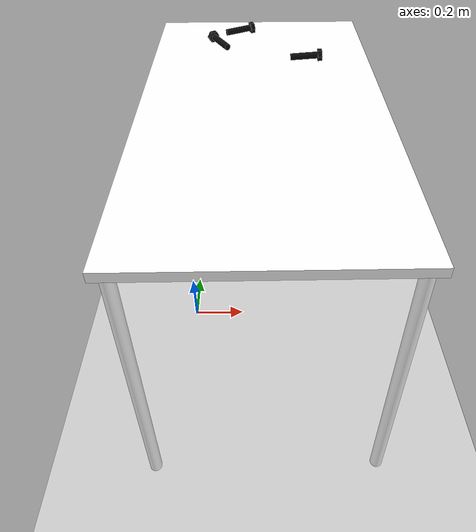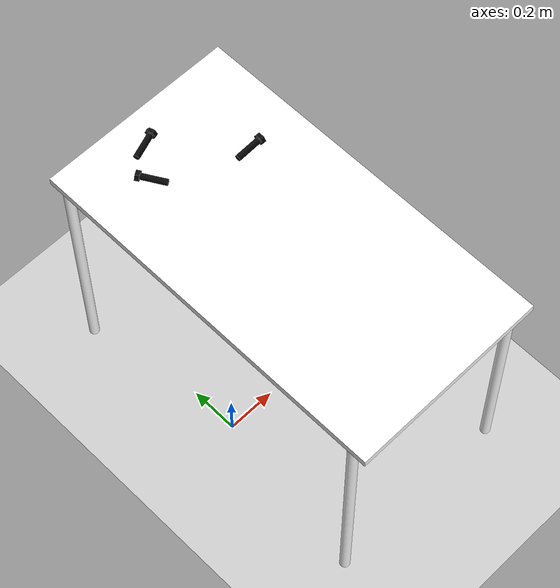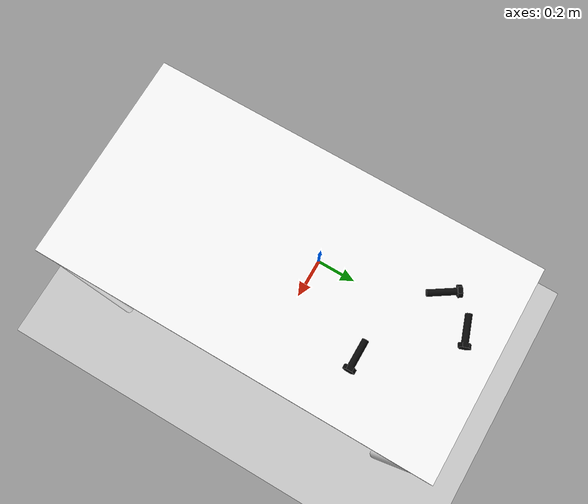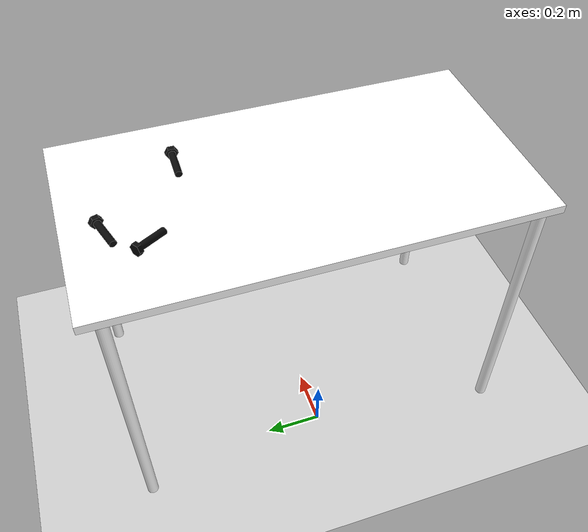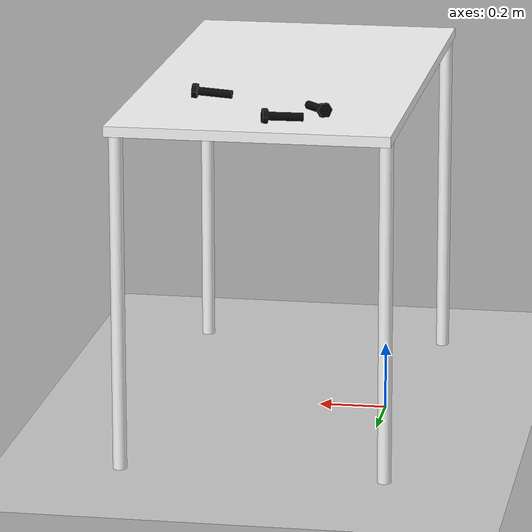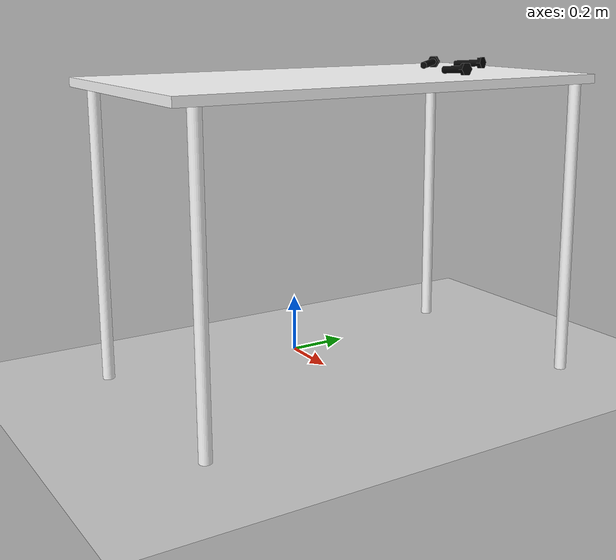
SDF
<sdf version='1.9'>
  <world name='arm_and_table'>
    <physics name='1ms' type='ignored'>
      <max_step_size>0.001</max_step_size>
      <real_time_factor>1</real_time_factor>
      <real_time_update_rate>1000</real_time_update_rate>
    </physics>
    <plugin name='ignition::gazebo::systems::Physics' filename='ignition-gazebo-physics-system'/>
    <plugin name='ignition::gazebo::systems::UserCommands' filename='ignition-gazebo-user-commands-system'/>
    <plugin name='ignition::gazebo::systems::SceneBroadcaster' filename='ignition-gazebo-scene-broadcaster-system'/>
    <scene>
      <shadows>false</shadows>
      <ambient>0.4 0.4 0.4 1</ambient>
      <background>0.7 0.7 0.7 1</background>
    </scene>
    <gui>
      <plugin name='3D View' filename='GzScene3D'>
        <ignition-gui>
          <title>3D View</title>
          <property type='bool' key='showTitleBar'>false</property>
          <property type='string' key='state'>docked</property>
        </ignition-gui>
        <engine>ogre2</engine>
        <scene>scene</scene>
        <ambient_light>0.4 0.4 0.4</ambient_light>
        <background_color>0.8 0.8 0.8</background_color>
        <camera_pose>2 2 2 0 0.5 -2.5</camera_pose>
      </plugin>
      <plugin name='World control' filename='WorldControl'>
        <ignition-gui>
          <title>World control</title>
          <property type='bool' key='showTitleBar'>false</property>
          <property type='bool' key='resizable'>false</property>
          <property type='double' key='height'>72</property>
          <property type='double' key='width'>121</property>
          <property type='double' key='z'>1</property>
          <property type='string' key='state'>floating</property>
          <anchors target='3D View'>
            <line own='left' target='left'/>
            <line own='bottom' target='bottom'/>
          </anchors>
        </ignition-gui>
        <play_pause>true</play_pause>
        <step>true</step>
        <start_paused>true</start_paused>
      </plugin>
      <plugin name='World stats' filename='WorldStats'>
        <ignition-gui>
          <title>World stats</title>
          <property type='bool' key='showTitleBar'>false</property>
          <property type='bool' key='resizable'>false</property>
          <property type='double' key='height'>110</property>
          <property type='double' key='width'>290</property>
          <property type='double' key='z'>1</property>
          <property type='string' key='state'>floating</property>
          <anchors target='3D View'>
            <line own='right' target='right'/>
            <line own='bottom' target='bottom'/>
          </anchors>
        </ignition-gui>
        <sim_time>true</sim_time>
        <real_time>true</real_time>
        <real_time_factor>true</real_time_factor>
        <iterations>true</iterations>
      </plugin>
    </gui>
    <gravity>0 0 -9.8</gravity>
    <magnetic_field>6e-06 2.3e-05 -4.2e-05</magnetic_field>
    <atmosphere type='adiabatic'/>
    <scene>
      <ambient>0.4 0.4 0.4 1</ambient>
      <background>0.7 0.7 0.7 1</background>
      <shadows>true</shadows>
    </scene>
    <model name='ground_plane'>
      <static>true</static>
      <link name='link'>
        <collision name='collision'>
          <geometry>
            <plane>
              <normal>0 0 1</normal>
              <size>100 100</size>
            </plane>
          </geometry>
          <surface>
            <friction>
              <ode/>
            </friction>
            <bounce/>
            <contact/>
          </surface>
        </collision>
        <visual name='visual'>
          <geometry>
            <plane>
              <normal>0 0 1</normal>
              <size>100 100</size>
            </plane>
          </geometry>
          <material>
            <ambient>0.8 0.8 0.8 1</ambient>
            <diffuse>0.8 0.8 0.8 1</diffuse>
            <specular>0.8 0.8 0.8 1</specular>
          </material>
        </visual>
        <pose>0 0 0 0 -0 0</pose>
        <inertial>
          <pose>0 0 0 0 -0 0</pose>
          <mass>1</mass>
          <inertia>
            <ixx>1</ixx>
            <ixy>0</ixy>
            <ixz>0</ixz>
            <iyy>1</iyy>
            <iyz>0</iyz>
            <izz>1</izz>
          </inertia>
        </inertial>
        <enable_wind>false</enable_wind>
      </link>
      <pose>0 0 0 0 -0 0</pose>
      <self_collide>false</self_collide>
    </model>
    <model name='table'>
      <static>true</static>
      <model name='table'>
        <static>true</static>
        <link name='link'>
          <collision name='surface'>
            <pose>0 0 1.0 0 0 0</pose>
            <geometry>
              <box>
                <size>1.5 0.8 0.03</size>
              </box>
            </geometry>
            <surface>
              <friction>
                <ode>
                  <mu>0.59999999999999998</mu>
                  <mu2>0.59999999999999998</mu2>
                </ode>
              </friction>
              <bounce/>
              <contact/>
            </surface>
          </collision>
          <visual name='visual1'>
            <pose>0 0 1.0 0 0 0</pose>
            <geometry>
              <box>
                <size>1.5 0.8 0.03</size>
              </box>
            </geometry>
            <material>
              <ambient>1 1 1 1</ambient>
              <diffuse>1 1 1 1</diffuse>
              <specular>1 1 1 1</specular>
            </material>
          </visual>
          <collision name='front_left_leg'>
            <pose>0.68 0.38 0.5 0 0 0</pose>
            <geometry>
              <cylinder>
                <radius>0.02</radius>
                <length>1</length>
              </cylinder>
            </geometry>
            <surface>
              <friction>
                <ode/>
              </friction>
              <bounce/>
              <contact/>
            </surface>
          </collision>
          <visual name='front_left_leg'>
            <pose>0.68 0.38 0.5 0 0 0</pose>
            <geometry>
              <cylinder>
                <radius>0.02</radius>
                <length>1</length>
              </cylinder>
            </geometry>
            <material>
              <ambient>1 1 1 1</ambient>
              <diffuse>1 1 1 1</diffuse>
              <specular>1 1 1 1</specular>
            </material>
          </visual>
          <collision name='front_right_leg'>
            <pose>0.68 -0.38 0.5 0 0 0</pose>
            <geometry>
              <cylinder>
                <radius>0.02</radius>
                <length>1</length>
              </cylinder>
            </geometry>
            <surface>
              <friction>
                <ode/>
              </friction>
              <bounce/>
              <contact/>
            </surface>
          </collision>
          <visual name='front_right_leg'>
            <pose>0.68 -0.38 0.5 0 0 0</pose>
            <geometry>
              <cylinder>
                <radius>0.02</radius>
                <length>1</length>
              </cylinder>
            </geometry>
            <material>
              <ambient>1 1 1 1</ambient>
              <diffuse>1 1 1 1</diffuse>
              <specular>1 1 1 1</specular>
            </material>
          </visual>
          <collision name='back_right_leg'>
            <pose>-0.68 -0.38 0.5 0 0 0</pose>
            <geometry>
              <cylinder>
                <radius>0.02</radius>
                <length>1</length>
              </cylinder>
            </geometry>
            <surface>
              <friction>
                <ode/>
              </friction>
              <bounce/>
              <contact/>
            </surface>
          </collision>
          <visual name='back_right_leg'>
            <pose>-0.68 -0.38 0.5 0 0 0</pose>
            <geometry>
              <cylinder>
                <radius>0.02</radius>
                <length>1</length>
              </cylinder>
            </geometry>
            <material>
              <ambient>1 1 1 1</ambient>
              <diffuse>1 1 1 1</diffuse>
              <specular>1 1 1 1</specular>
            </material>
          </visual>
          <collision name='back_left_leg'>
            <pose>-0.68 0.38 0.5 0 0 0</pose>
            <geometry>
              <cylinder>
                <radius>0.02</radius>
                <length>1</length>
              </cylinder>
            </geometry>
            <surface>
              <friction>
                <ode/>
              </friction>
              <bounce/>
              <contact/>
            </surface>
          </collision>
          <visual name='back_left_leg'>
            <pose>-0.68 0.38 0.5 0 0 0</pose>
            <geometry>
              <cylinder>
                <radius>0.02</radius>
                <length>1</length>
              </cylinder>
            </geometry>
            <material>
              <ambient>1 1 1 1</ambient>
              <diffuse>1 1 1 1</diffuse>
              <specular>1 1 1 1</specular>
            </material>
          </visual>
        </link>
      </model>
      <pose>0.29 0 0 0 -0 1.5708</pose>
      <self_collide>false</self_collide>
    </model>
    <model name='bolt1'>
      <model name='bolt'>
        <static>false</static>
        <link name='link'>
          <inertial>
            <mass>0.064000000000000001</mass>
            <inertia>
              <ixx>2.1715000000000001e-05</ixx>
              <ixy>0</ixy>
              <ixz>0</ixz>
              <iyy>2.1715000000000001e-05</iyy>
              <iyz>0</iyz>
              <izz>1.7799999999999999e-06</izz>
            </inertia>
            <pose>0 0 0 0 0 0</pose>
          </inertial>
          <collision name='collision'>
            <geometry>
              <mesh>
                <scale>1 1 1</scale>
                <uri>model://bolt/meshes/bolt.stl</uri>
              </mesh>
            </geometry>
            <surface>
              <bounce>
                <restitution_coefficient>0</restitution_coefficient>
                <threshold>0.01</threshold>
              </bounce>
              <friction>
                <ode>
                  <mu>1.2</mu>
                  <mu2>1.2</mu2>
                </ode>
              </friction>
            </surface>
          </collision>
          <visual name='visual'>
            <geometry>
              <mesh>
                <scale>1 1 1</scale>
                <uri>model://bolt/meshes/bolt.dae</uri>
              </mesh>
            </geometry>
          </visual>
        </link>
      </model>
      <pose>0.500024 0.35 1.03392 0 1.50125 0</pose>
      <static>false</static>
      <self_collide>false</self_collide>
    </model>
    <model name='bolt2'>
      <model name='bolt'>
        <static>false</static>
        <link name='link'>
          <inertial>
            <mass>0.064000000000000001</mass>
            <inertia>
              <ixx>2.1715000000000001e-05</ixx>
              <ixy>0</ixy>
              <ixz>0</ixz>
              <iyy>2.1715000000000001e-05</iyy>
              <iyz>0</iyz>
              <izz>1.7799999999999999e-06</izz>
            </inertia>
            <pose>0 0 0 0 0 0</pose>
          </inertial>
          <collision name='collision'>
            <geometry>
              <mesh>
                <scale>1 1 1</scale>
                <uri>model://bolt/meshes/bolt.stl</uri>
              </mesh>
            </geometry>
            <surface>
              <bounce>
                <restitution_coefficient>0</restitution_coefficient>
                <threshold>0.01</threshold>
              </bounce>
              <friction>
                <ode>
                  <mu>1.2</mu>
                  <mu2>1.2</mu2>
                </ode>
              </friction>
            </surface>
          </collision>
          <visual name='visual'>
            <geometry>
              <mesh>
                <scale>1 1 1</scale>
                <uri>model://bolt/meshes/bolt.dae</uri>
              </mesh>
            </geometry>
          </visual>
        </link>
      </model>
      <pose>0.250022 0.630007 1.03392 -0 -1.50125 -2.82</pose>
      <static>false</static>
      <self_collide>false</self_collide>
    </model>
    <model name='bolt3'>
      <model name='bolt'>
        <static>false</static>
        <link name='link'>
          <inertial>
            <mass>0.064000000000000001</mass>
            <inertia>
              <ixx>2.1715000000000001e-05</ixx>
              <ixy>0</ixy>
              <ixz>0</ixz>
              <iyy>2.1715000000000001e-05</iyy>
              <iyz>0</iyz>
              <izz>1.7799999999999999e-06</izz>
            </inertia>
            <pose>0 0 0 0 0 0</pose>
          </inertial>
          <collision name='collision'>
            <geometry>
              <mesh>
                <scale>1 1 1</scale>
                <uri>model://bolt/meshes/bolt.stl</uri>
              </mesh>
            </geometry>
            <surface>
              <bounce>
                <restitution_coefficient>0</restitution_coefficient>
                <threshold>0.01</threshold>
              </bounce>
              <friction>
                <ode>
                  <mu>1.2</mu>
                  <mu2>1.2</mu2>
                </ode>
              </friction>
            </surface>
          </collision>
          <visual name='visual'>
            <geometry>
              <mesh>
                <scale>1 1 1</scale>
                <uri>model://bolt/meshes/bolt.dae</uri>
              </mesh>
            </geometry>
          </visual>
        </link>
      </model>
      <pose>0.109987 0.53002 1.03392 -0 -1.50125 -1</pose>
      <static>false</static>
      <self_collide>false</self_collide>
    </model>
    <light name='sun' type='directional'>
      <pose>0 0 10 0 -0 0</pose>
      <cast_shadows>true</cast_shadows>
      <intensity>1</intensity>
      <direction>-0.5 0.1 -0.9</direction>
      <diffuse>0.8 0.8 0.8 1</diffuse>
      <specular>0.2 0.2 0.2 1</specular>
      <attenuation>
        <range>1000</range>
        <linear>0.01</linear>
        <constant>0.90000000000000002</constant>
        <quadratic>0.001</quadratic>
      </attenuation>
      <spot>
        <inner_angle>0</inner_angle>
        <outer_angle>0</outer_angle>
        <falloff>0</falloff>
      </spot>
    </light>
  </world>
</sdf>
